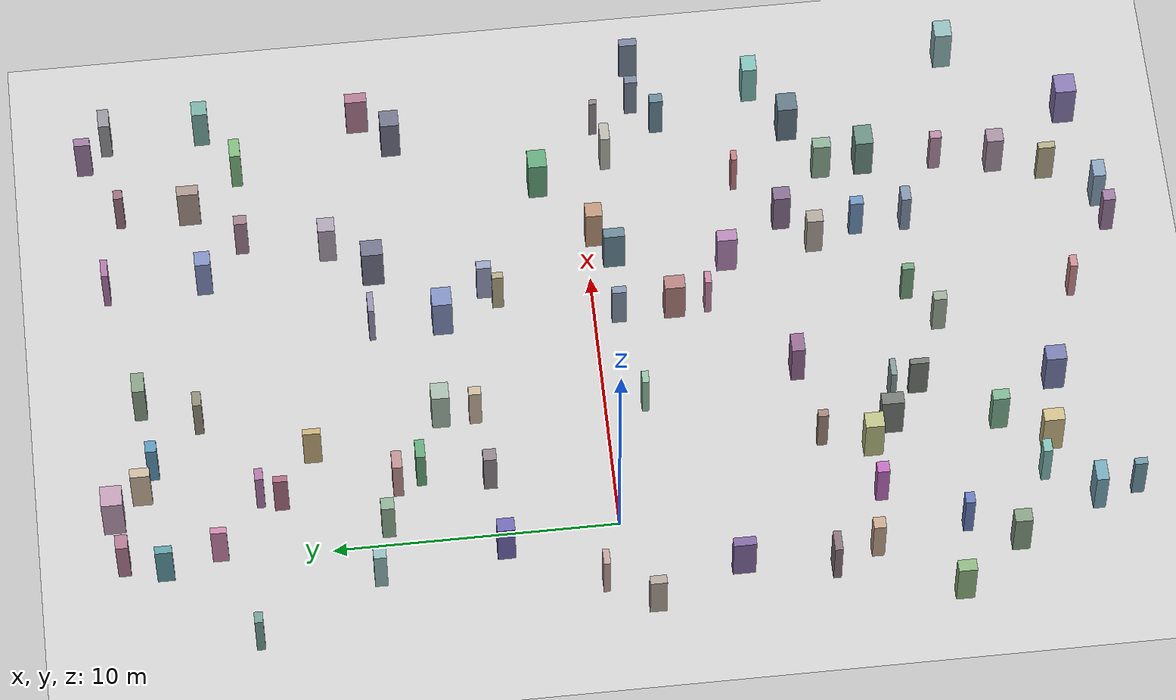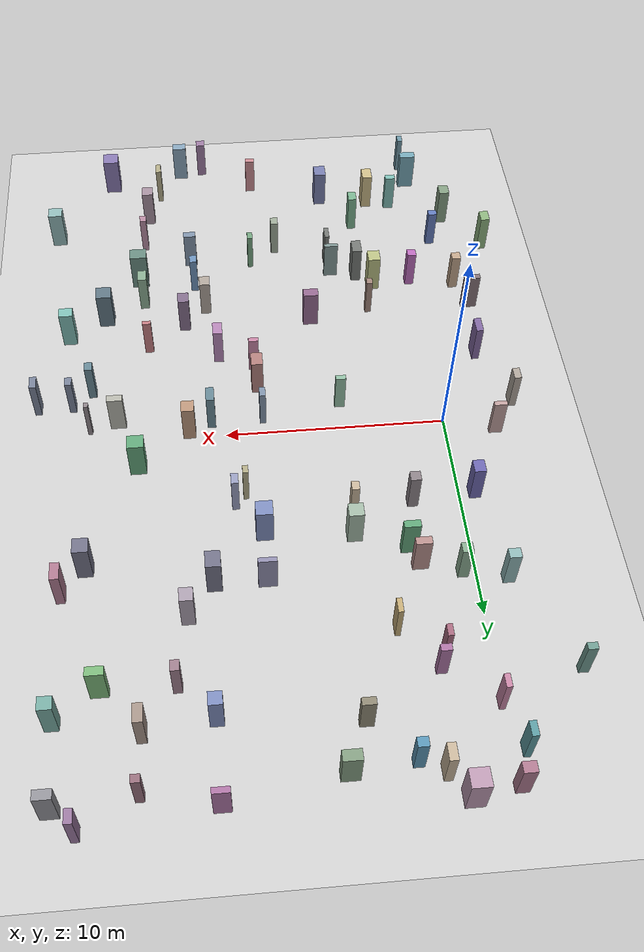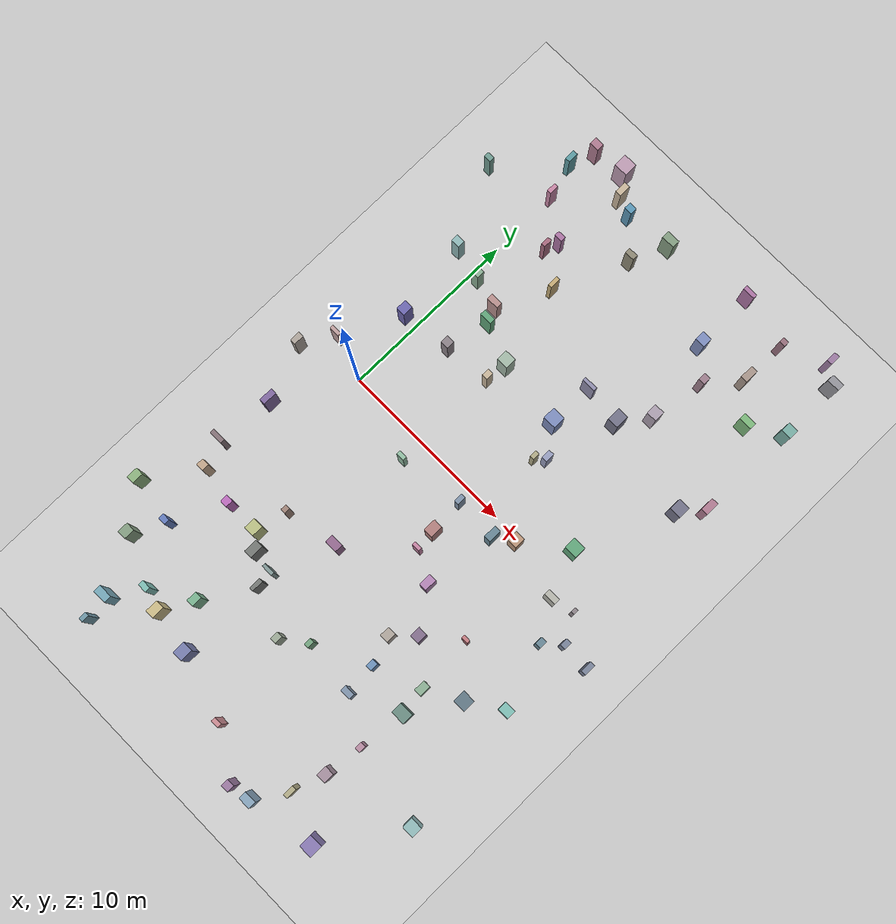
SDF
<sdf version="1.6">
 <world name="mockamap_single_floor">
  <include><uri>model://sun</uri></include>
  <include><uri>model://ground_plane</uri></include>
  <model name="mockamap_box_001">
   <static>true</static>
   <pose>6.2818 16.2389 1.0000 0 0 0</pose>
   <link name="link">
    <collision name="collision"><geometry><box><size>0.7641 0.4449 2.0000</size></box></geometry></collision>
    <visual name="visual">
     <geometry><box><size>0.7641 0.4449 2.0000</size></box></geometry>
     <material><ambient>0.516 0.613 0.507 1.000</ambient><diffuse>0.516 0.613 0.507 1.000</diffuse></material>
    </visual>
   </link>
  </model>
  <model name="mockamap_box_002">
   <static>true</static>
   <pose>17.2371 7.7062 1.0000 0 0 0</pose>
   <link name="link">
    <collision name="collision"><geometry><box><size>0.3860 0.7708 2.0000</size></box></geometry></collision>
    <visual name="visual">
     <geometry><box><size>0.3860 0.7708 2.0000</size></box></geometry>
     <material><ambient>0.683 0.477 0.564 1.000</ambient><diffuse>0.683 0.477 0.564 1.000</diffuse></material>
    </visual>
   </link>
  </model>
  <model name="mockamap_box_004">
   <static>true</static>
   <pose>8.7001 7.9001 1.0000 0 0 0</pose>
   <link name="link">
    <collision name="collision"><geometry><box><size>0.7857 0.2130 2.0000</size></box></geometry></collision>
    <visual name="visual">
     <geometry><box><size>0.7857 0.2130 2.0000</size></box></geometry>
     <material><ambient>0.566 0.554 0.678 1.000</ambient><diffuse>0.566 0.554 0.678 1.000</diffuse></material>
    </visual>
   </link>
  </model>
  <model name="mockamap_box_005">
   <static>true</static>
   <pose>0.2145 -9.1443 1.0000 0 0 0</pose>
   <link name="link">
    <collision name="collision"><geometry><box><size>0.4235 0.4261 2.0000</size></box></geometry></collision>
    <visual name="visual">
     <geometry><box><size>0.4235 0.4261 2.0000</size></box></geometry>
     <material><ambient>0.732 0.418 0.735 1.000</ambient><diffuse>0.732 0.418 0.735 1.000</diffuse></material>
    </visual>
   </link>
  </model>
  <model name="mockamap_box_006">
   <static>true</static>
   <pose>8.1564 -11.0577 1.0000 0 0 0</pose>
   <link name="link">
    <collision name="collision"><geometry><box><size>0.2580 0.4222 2.0000</size></box></geometry></collision>
    <visual name="visual">
     <geometry><box><size>0.2580 0.4222 2.0000</size></box></geometry>
     <material><ambient>0.449 0.631 0.492 1.000</ambient><diffuse>0.449 0.631 0.492 1.000</diffuse></material>
    </visual>
   </link>
  </model>
  <model name="mockamap_box_007">
   <static>true</static>
   <pose>12.5498 12.1996 1.0000 0 0 0</pose>
   <link name="link">
    <collision name="collision"><geometry><box><size>0.3694 0.4579 2.0000</size></box></geometry></collision>
    <visual name="visual">
     <geometry><box><size>0.3694 0.4579 2.0000</size></box></geometry>
     <material><ambient>0.615 0.494 0.549 1.000</ambient><diffuse>0.615 0.494 0.549 1.000</diffuse></material>
    </visual>
   </link>
  </model>
  <model name="mockamap_box_008">
   <static>true</static>
   <pose>2.6775 16.4101 1.0000 0 0 0</pose>
   <link name="link">
    <collision name="collision"><geometry><box><size>0.3515 0.6904 2.0000</size></box></geometry></collision>
    <visual name="visual">
     <geometry><box><size>0.3515 0.6904 2.0000</size></box></geometry>
     <material><ambient>0.782 0.708 0.606 1.000</ambient><diffuse>0.782 0.708 0.606 1.000</diffuse></material>
    </visual>
   </link>
  </model>
  <model name="mockamap_box_009">
   <static>true</static>
   <pose>11.1872 -11.3733 1.0000 0 0 0</pose>
   <link name="link">
    <collision name="collision"><geometry><box><size>0.5878 0.3460 2.0000</size></box></geometry></collision>
    <visual name="visual">
     <geometry><box><size>0.5878 0.3460 2.0000</size></box></geometry>
     <material><ambient>0.498 0.572 0.663 1.000</ambient><diffuse>0.498 0.572 0.663 1.000</diffuse></material>
    </visual>
   </link>
  </model>
  <model name="mockamap_box_011">
   <static>true</static>
   <pose>2.6178 6.7005 1.0000 0 0 0</pose>
   <link name="link">
    <collision name="collision"><geometry><box><size>0.7099 0.3323 2.0000</size></box></geometry></collision>
    <visual name="visual">
     <geometry><box><size>0.7099 0.3323 2.0000</size></box></geometry>
     <material><ambient>0.381 0.648 0.477 1.000</ambient><diffuse>0.381 0.648 0.477 1.000</diffuse></material>
    </visual>
   </link>
  </model>
  <model name="mockamap_box_012">
   <static>true</static>
   <pose>2.1197 4.3284 1.0000 0 0 0</pose>
   <link name="link">
    <collision name="collision"><geometry><box><size>0.4533 0.4592 2.0000</size></box></geometry></collision>
    <visual name="visual">
     <geometry><box><size>0.4533 0.4592 2.0000</size></box></geometry>
     <material><ambient>0.548 0.512 0.534 1.000</ambient><diffuse>0.548 0.512 0.534 1.000</diffuse></material>
    </visual>
   </link>
  </model>
  <model name="mockamap_box_020">
   <static>true</static>
   <pose>15.1869 -17.6498 1.0000 0 0 0</pose>
   <link name="link">
    <collision name="collision"><geometry><box><size>0.7612 0.7426 2.0000</size></box></geometry></collision>
    <visual name="visual">
     <geometry><box><size>0.7612 0.7426 2.0000</size></box></geometry>
     <material><ambient>0.530 0.470 0.690 1.000</ambient><diffuse>0.530 0.470 0.690 1.000</diffuse></material>
    </visual>
   </link>
  </model>
  <model name="mockamap_box_023">
   <static>true</static>
   <pose>5.4816 -6.8172 1.0000 0 0 0</pose>
   <link name="link">
    <collision name="collision"><geometry><box><size>0.7093 0.4625 2.0000</size></box></geometry></collision>
    <visual name="visual">
     <geometry><box><size>0.7093 0.4625 2.0000</size></box></geometry>
     <material><ambient>0.579 0.411 0.561 1.000</ambient><diffuse>0.579 0.411 0.561 1.000</diffuse></material>
    </visual>
   </link>
  </model>
  <model name="mockamap_box_029">
   <static>true</static>
   <pose>10.5710 -8.0434 1.0000 0 0 0</pose>
   <link name="link">
    <collision name="collision"><geometry><box><size>0.4899 0.5765 2.0000</size></box></geometry></collision>
    <visual name="visual">
     <geometry><box><size>0.4899 0.5765 2.0000</size></box></geometry>
     <material><ambient>0.678 0.641 0.603 1.000</ambient><diffuse>0.678 0.641 0.603 1.000</diffuse></material>
    </visual>
   </link>
  </model>
  <model name="mockamap_box_031">
   <static>true</static>
   <pose>17.9842 -13.6035 1.0000 0 0 0</pose>
   <link name="link">
    <collision name="collision"><geometry><box><size>0.6874 0.6146 2.0000</size></box></geometry></collision>
    <visual name="visual">
     <geometry><box><size>0.6874 0.6146 2.0000</size></box></geometry>
     <material><ambient>0.561 0.719 0.717 1.000</ambient><diffuse>0.561 0.719 0.717 1.000</diffuse></material>
    </visual>
   </link>
  </model>
  <model name="mockamap_box_033">
   <static>true</static>
   <pose>10.9038 7.6736 1.0000 0 0 0</pose>
   <link name="link">
    <collision name="collision"><geometry><box><size>0.6380 0.7614 2.0000</size></box></geometry></collision>
    <visual name="visual">
     <geometry><box><size>0.6380 0.7614 2.0000</size></box></geometry>
     <material><ambient>0.445 0.446 0.531 1.000</ambient><diffuse>0.445 0.446 0.531 1.000</diffuse></material>
    </visual>
   </link>
  </model>
  <model name="mockamap_box_035">
   <static>true</static>
   <pose>8.4592 -3.9993 1.0000 0 0 0</pose>
   <link name="link">
    <collision name="collision"><geometry><box><size>0.4658 0.2275 2.0000</size></box></geometry></collision>
    <visual name="visual">
     <geometry><box><size>0.4658 0.2275 2.0000</size></box></geometry>
     <material><ambient>0.777 0.522 0.645 1.000</ambient><diffuse>0.777 0.522 0.645 1.000</diffuse></material>
    </visual>
   </link>
  </model>
  <model name="mockamap_box_036">
   <static>true</static>
   <pose>0.4680 -14.9104 1.0000 0 0 0</pose>
   <link name="link">
    <collision name="collision"><geometry><box><size>0.4964 0.3110 2.0000</size></box></geometry></collision>
    <visual name="visual">
     <geometry><box><size>0.4964 0.3110 2.0000</size></box></geometry>
     <material><ambient>0.494 0.736 0.702 1.000</ambient><diffuse>0.494 0.736 0.702 1.000</diffuse></material>
    </visual>
   </link>
  </model>
  <model name="mockamap_box_039">
   <static>true</static>
   <pose>13.5970 -8.6630 1.0000 0 0 0</pose>
   <link name="link">
    <collision name="collision"><geometry><box><size>0.4249 0.6387 2.0000</size></box></geometry></collision>
    <visual name="visual">
     <geometry><box><size>0.4249 0.6387 2.0000</size></box></geometry>
     <material><ambient>0.543 0.676 0.573 1.000</ambient><diffuse>0.543 0.676 0.573 1.000</diffuse></material>
    </visual>
   </link>
  </model>
  <model name="mockamap_box_040">
   <static>true</static>
   <pose>13.5120 -12.7550 1.0000 0 0 0</pose>
   <link name="link">
    <collision name="collision"><geometry><box><size>0.3060 0.4020 2.0000</size></box></geometry></collision>
    <visual name="visual">
     <geometry><box><size>0.3060 0.4020 2.0000</size></box></geometry>
     <material><ambient>0.710 0.540 0.630 1.000</ambient><diffuse>0.710 0.540 0.630 1.000</diffuse></material>
    </visual>
   </link>
  </model>
  <model name="mockamap_box_041">
   <static>true</static>
   <pose>-0.6810 4.0384 1.0000 0 0 0</pose>
   <link name="link">
    <collision name="collision"><geometry><box><size>0.5067 0.6144 2.0000</size></box></geometry></collision>
    <visual name="visual">
     <geometry><box><size>0.5067 0.6144 2.0000</size></box></geometry>
     <material><ambient>0.426 0.404 0.687 1.000</ambient><diffuse>0.426 0.404 0.687 1.000</diffuse></material>
    </visual>
   </link>
  </model>
  <model name="mockamap_box_044">
   <static>true</static>
   <pose>2.6485 -13.5885 1.0000 0 0 0</pose>
   <link name="link">
    <collision name="collision"><geometry><box><size>0.4067 0.5897 2.0000</size></box></geometry></collision>
    <visual name="visual">
     <geometry><box><size>0.4067 0.5897 2.0000</size></box></geometry>
     <material><ambient>0.476 0.694 0.558 1.000</ambient><diffuse>0.476 0.694 0.558 1.000</diffuse></material>
    </visual>
   </link>
  </model>
  <model name="mockamap_box_045">
   <static>true</static>
   <pose>13.2676 -14.8459 1.0000 0 0 0</pose>
   <link name="link">
    <collision name="collision"><geometry><box><size>0.5390 0.5967 2.0000</size></box></geometry></collision>
    <visual name="visual">
     <geometry><box><size>0.5390 0.5967 2.0000</size></box></geometry>
     <material><ambient>0.642 0.557 0.615 1.000</ambient><diffuse>0.642 0.557 0.615 1.000</diffuse></material>
    </visual>
   </link>
  </model>
  <model name="mockamap_box_047">
   <static>true</static>
   <pose>11.5087 -18.3367 1.0000 0 0 0</pose>
   <link name="link">
    <collision name="collision"><geometry><box><size>0.6854 0.4426 2.0000</size></box></geometry></collision>
    <visual name="visual">
     <geometry><box><size>0.6854 0.4426 2.0000</size></box></geometry>
     <material><ambient>0.525 0.635 0.729 1.000</ambient><diffuse>0.525 0.635 0.729 1.000</diffuse></material>
    </visual>
   </link>
  </model>
  <model name="mockamap_box_048">
   <static>true</static>
   <pose>8.3840 -2.8104 1.0000 0 0 0</pose>
   <link name="link">
    <collision name="collision"><geometry><box><size>0.5285 0.7263 2.0000</size></box></geometry></collision>
    <visual name="visual">
     <geometry><box><size>0.5285 0.7263 2.0000</size></box></geometry>
     <material><ambient>0.692 0.498 0.486 1.000</ambient><diffuse>0.692 0.498 0.486 1.000</diffuse></material>
    </visual>
   </link>
  </model>
  <model name="mockamap_box_050">
   <static>true</static>
   <pose>17.3284 16.7434 1.0000 0 0 0</pose>
   <link name="link">
    <collision name="collision"><geometry><box><size>0.7277 0.3998 2.0000</size></box></geometry></collision>
    <visual name="visual">
     <geometry><box><size>0.7277 0.3998 2.0000</size></box></geometry>
     <material><ambient>0.575 0.575 0.600 1.000</ambient><diffuse>0.575 0.575 0.600 1.000</diffuse></material>
    </visual>
   </link>
  </model>
  <model name="mockamap_box_053">
   <static>true</static>
   <pose>2.5545 -7.3487 1.0000 0 0 0</pose>
   <link name="link">
    <collision name="collision"><geometry><box><size>0.2836 0.3546 2.0000</size></box></geometry></collision>
    <visual name="visual">
     <geometry><box><size>0.2836 0.3546 2.0000</size></box></geometry>
     <material><ambient>0.624 0.516 0.471 1.000</ambient><diffuse>0.624 0.516 0.471 1.000</diffuse></material>
    </visual>
   </link>
  </model>
  <model name="mockamap_box_054">
   <static>true</static>
   <pose>1.6635 -15.3077 1.0000 0 0 0</pose>
   <link name="link">
    <collision name="collision"><geometry><box><size>0.4880 0.7212 2.0000</size></box></geometry></collision>
    <visual name="visual">
     <geometry><box><size>0.4880 0.7212 2.0000</size></box></geometry>
     <material><ambient>0.791 0.729 0.528 1.000</ambient><diffuse>0.791 0.729 0.528 1.000</diffuse></material>
    </visual>
   </link>
  </model>
  <model name="mockamap_box_056">
   <static>true</static>
   <pose>11.0569 17.1082 1.0000 0 0 0</pose>
   <link name="link">
    <collision name="collision"><geometry><box><size>0.6971 0.2421 2.0000</size></box></geometry></collision>
    <visual name="visual">
     <geometry><box><size>0.6971 0.2421 2.0000</size></box></geometry>
     <material><ambient>0.674 0.456 0.642 1.000</ambient><diffuse>0.674 0.456 0.642 1.000</diffuse></material>
    </visual>
   </link>
  </model>
  <model name="mockamap_box_059">
   <static>true</static>
   <pose>2.1037 -9.0892 1.0000 0 0 0</pose>
   <link name="link">
    <collision name="collision"><geometry><box><size>0.5887 0.6668 2.0000</size></box></geometry></collision>
    <visual name="visual">
     <geometry><box><size>0.5887 0.6668 2.0000</size></box></geometry>
     <material><ambient>0.724 0.746 0.513 1.000</ambient><diffuse>0.724 0.746 0.513 1.000</diffuse></material>
    </visual>
   </link>
  </model>
  <model name="mockamap_box_060">
   <static>true</static>
   <pose>-3.3759 12.7470 1.0000 0 0 0</pose>
   <link name="link">
    <collision name="collision"><geometry><box><size>0.4164 0.2947 2.0000</size></box></geometry></collision>
    <visual name="visual">
     <geometry><box><size>0.4164 0.2947 2.0000</size></box></geometry>
     <material><ambient>0.440 0.610 0.570 1.000</ambient><diffuse>0.440 0.610 0.570 1.000</diffuse></material>
    </visual>
   </link>
  </model>
  <model name="mockamap_box_061">
   <static>true</static>
   <pose>16.3893 17.5754 1.0000 0 0 0</pose>
   <link name="link">
    <collision name="collision"><geometry><box><size>0.3185 0.5636 2.0000</size></box></geometry></collision>
    <visual name="visual">
     <geometry><box><size>0.3185 0.5636 2.0000</size></box></geometry>
     <material><ambient>0.607 0.474 0.627 1.000</ambient><diffuse>0.607 0.474 0.627 1.000</diffuse></material>
    </visual>
   </link>
  </model>
  <model name="mockamap_box_063">
   <static>true</static>
   <pose>8.6541 5.4035 1.0000 0 0 0</pose>
   <link name="link">
    <collision name="collision"><geometry><box><size>0.7348 0.7013 2.0000</size></box></geometry></collision>
    <visual name="visual">
     <geometry><box><size>0.7348 0.7013 2.0000</size></box></geometry>
     <material><ambient>0.489 0.550 0.741 1.000</ambient><diffuse>0.489 0.550 0.741 1.000</diffuse></material>
    </visual>
   </link>
  </model>
  <model name="mockamap_box_064">
   <static>true</static>
   <pose>1.9212 11.6076 1.0000 0 0 0</pose>
   <link name="link">
    <collision name="collision"><geometry><box><size>0.2420 0.5027 2.0000</size></box></geometry></collision>
    <visual name="visual">
     <geometry><box><size>0.2420 0.5027 2.0000</size></box></geometry>
     <material><ambient>0.656 0.414 0.498 1.000</ambient><diffuse>0.656 0.414 0.498 1.000</diffuse></material>
    </visual>
   </link>
  </model>
  <model name="mockamap_box_067">
   <static>true</static>
   <pose>14.8944 -1.0081 1.0000 0 0 0</pose>
   <link name="link">
    <collision name="collision"><geometry><box><size>0.7002 0.3442 2.0000</size></box></geometry></collision>
    <visual name="visual">
     <geometry><box><size>0.7002 0.3442 2.0000</size></box></geometry>
     <material><ambient>0.706 0.705 0.669 1.000</ambient><diffuse>0.706 0.705 0.669 1.000</diffuse></material>
    </visual>
   </link>
  </model>
  <model name="mockamap_box_068">
   <static>true</static>
   <pose>11.0686 -9.6048 1.0000 0 0 0</pose>
   <link name="link">
    <collision name="collision"><geometry><box><size>0.3391 0.4649 2.0000</size></box></geometry></collision>
    <visual name="visual">
     <geometry><box><size>0.3391 0.4649 2.0000</size></box></geometry>
     <material><ambient>0.422 0.568 0.726 1.000</ambient><diffuse>0.422 0.568 0.726 1.000</diffuse></material>
    </visual>
   </link>
  </model>
  <model name="mockamap_box_071">
   <static>true</static>
   <pose>16.9889 -2.1742 1.0000 0 0 0</pose>
   <link name="link">
    <collision name="collision"><geometry><box><size>0.3049 0.4423 2.0000</size></box></geometry></collision>
    <visual name="visual">
     <geometry><box><size>0.3049 0.4423 2.0000</size></box></geometry>
     <material><ambient>0.471 0.509 0.597 1.000</ambient><diffuse>0.471 0.509 0.597 1.000</diffuse></material>
    </visual>
   </link>
  </model>
  <model name="mockamap_box_073">
   <static>true</static>
   <pose>3.6791 15.9606 1.0000 0 0 0</pose>
   <link name="link">
    <collision name="collision"><geometry><box><size>0.4465 0.3913 2.0000</size></box></geometry></collision>
    <visual name="visual">
     <geometry><box><size>0.4465 0.3913 2.0000</size></box></geometry>
     <material><ambient>0.354 0.586 0.711 1.000</ambient><diffuse>0.354 0.586 0.711 1.000</diffuse></material>
    </visual>
   </link>
  </model>
  <model name="mockamap_box_074">
   <static>true</static>
   <pose>-2.5006 -7.2289 1.0000 0 0 0</pose>
   <link name="link">
    <collision name="collision"><geometry><box><size>0.7480 0.2748 2.0000</size></box></geometry></collision>
    <visual name="visual">
     <geometry><box><size>0.7480 0.2748 2.0000</size></box></geometry>
     <material><ambient>0.521 0.449 0.468 1.000</ambient><diffuse>0.521 0.449 0.468 1.000</diffuse></material>
    </visual>
   </link>
  </model>
  <model name="mockamap_box_075">
   <static>true</static>
   <pose>12.6572 -16.6273 1.0000 0 0 0</pose>
   <link name="link">
    <collision name="collision"><geometry><box><size>0.2594 0.5960 2.0000</size></box></geometry></collision>
    <visual name="visual">
     <geometry><box><size>0.2594 0.5960 2.0000</size></box></geometry>
     <material><ambient>0.688 0.663 0.525 1.000</ambient><diffuse>0.688 0.663 0.525 1.000</diffuse></material>
    </visual>
   </link>
  </model>
  <model name="mockamap_box_076">
   <static>true</static>
   <pose>16.0989 -2.9907 1.0000 0 0 0</pose>
   <link name="link">
    <collision name="collision"><geometry><box><size>0.3531 0.4639 2.0000</size></box></geometry></collision>
    <visual name="visual">
     <geometry><box><size>0.3531 0.4639 2.0000</size></box></geometry>
     <material><ambient>0.404 0.526 0.582 1.000</ambient><diffuse>0.404 0.526 0.582 1.000</diffuse></material>
    </visual>
   </link>
  </model>
  <model name="mockamap_box_077">
   <static>true</static>
   <pose>4.6569 -1.3683 1.0000 0 0 0</pose>
   <link name="link">
    <collision name="collision"><geometry><box><size>0.4637 0.2388 2.0000</size></box></geometry></collision>
    <visual name="visual">
     <geometry><box><size>0.4637 0.2388 2.0000</size></box></geometry>
     <material><ambient>0.571 0.740 0.639 1.000</ambient><diffuse>0.571 0.740 0.639 1.000</diffuse></material>
    </visual>
   </link>
  </model>
  <model name="mockamap_box_078">
   <static>true</static>
   <pose>1.8646 17.4409 1.0000 0 0 0</pose>
   <link name="link">
    <collision name="collision"><geometry><box><size>0.7851 0.7520 2.0000</size></box></geometry></collision>
    <visual name="visual">
     <geometry><box><size>0.7851 0.7520 2.0000</size></box></geometry>
     <material><ambient>0.737 0.603 0.696 1.000</ambient><diffuse>0.737 0.603 0.696 1.000</diffuse></material>
    </visual>
   </link>
  </model>
  <model name="mockamap_box_079">
   <static>true</static>
   <pose>2.8908 -9.8268 1.0000 0 0 0</pose>
   <link name="link">
    <collision name="collision"><geometry><box><size>0.4596 0.7868 2.0000</size></box></geometry></collision>
    <visual name="visual">
     <geometry><box><size>0.4596 0.7868 2.0000</size></box></geometry>
     <material><ambient>0.453 0.467 0.453 1.000</ambient><diffuse>0.453 0.467 0.453 1.000</diffuse></material>
    </visual>
   </link>
  </model>
  <model name="mockamap_box_081">
   <static>true</static>
   <pose>7.7788 -16.8806 1.0000 0 0 0</pose>
   <link name="link">
    <collision name="collision"><geometry><box><size>0.4600 0.2597 2.0000</size></box></geometry></collision>
    <visual name="visual">
     <geometry><box><size>0.4600 0.2597 2.0000</size></box></geometry>
     <material><ambient>0.786 0.543 0.567 1.000</ambient><diffuse>0.786 0.543 0.567 1.000</diffuse></material>
    </visual>
   </link>
  </model>
  <model name="mockamap_box_082">
   <static>true</static>
   <pose>-2.1978 -4.0511 1.0000 0 0 0</pose>
   <link name="link">
    <collision name="collision"><geometry><box><size>0.3301 0.7954 2.0000</size></box></geometry></collision>
    <visual name="visual">
     <geometry><box><size>0.3301 0.7954 2.0000</size></box></geometry>
     <material><ambient>0.503 0.407 0.624 1.000</ambient><diffuse>0.503 0.407 0.624 1.000</diffuse></material>
    </visual>
   </link>
  </model>
  <model name="mockamap_box_083">
   <static>true</static>
   <pose>12.0341 9.1957 1.0000 0 0 0</pose>
   <link name="link">
    <collision name="collision"><geometry><box><size>0.5703 0.6032 2.0000</size></box></geometry></collision>
    <visual name="visual">
     <geometry><box><size>0.5703 0.6032 2.0000</size></box></geometry>
     <material><ambient>0.669 0.621 0.681 1.000</ambient><diffuse>0.669 0.621 0.681 1.000</diffuse></material>
    </visual>
   </link>
  </model>
  <model name="mockamap_box_084">
   <static>true</static>
   <pose>-1.3048 -11.9632 1.0000 0 0 0</pose>
   <link name="link">
    <collision name="collision"><geometry><box><size>0.4255 0.3297 2.0000</size></box></geometry></collision>
    <visual name="visual">
     <geometry><box><size>0.4255 0.3297 2.0000</size></box></geometry>
     <material><ambient>0.386 0.484 0.738 1.000</ambient><diffuse>0.386 0.484 0.738 1.000</diffuse></material>
    </visual>
   </link>
  </model>
  <model name="mockamap_box_085">
   <static>true</static>
   <pose>-3.9207 -11.5116 1.0000 0 0 0</pose>
   <link name="link">
    <collision name="collision"><geometry><box><size>0.4373 0.6448 2.0000</size></box></geometry></collision>
    <visual name="visual">
     <geometry><box><size>0.4373 0.6448 2.0000</size></box></geometry>
     <material><ambient>0.552 0.698 0.495 1.000</ambient><diffuse>0.552 0.698 0.495 1.000</diffuse></material>
    </visual>
   </link>
  </model>
  <model name="mockamap_box_086">
   <static>true</static>
   <pose>2.2751 7.5382 1.0000 0 0 0</pose>
   <link name="link">
    <collision name="collision"><geometry><box><size>0.6881 0.3488 2.0000</size></box></geometry></collision>
    <visual name="visual">
     <geometry><box><size>0.6881 0.3488 2.0000</size></box></geometry>
     <material><ambient>0.719 0.561 0.552 1.000</ambient><diffuse>0.719 0.561 0.552 1.000</diffuse></material>
    </visual>
   </link>
  </model>
  <model name="mockamap_box_090">
   <static>true</static>
   <pose>15.5859 12.1777 1.0000 0 0 0</pose>
   <link name="link">
    <collision name="collision"><geometry><box><size>0.7402 0.3820 2.0000</size></box></geometry></collision>
    <visual name="visual">
     <geometry><box><size>0.7402 0.3820 2.0000</size></box></geometry>
     <material><ambient>0.485 0.715 0.480 1.000</ambient><diffuse>0.485 0.715 0.480 1.000</diffuse></material>
    </visual>
   </link>
  </model>
  <model name="mockamap_box_091">
   <static>true</static>
   <pose>13.9666 13.9694 1.0000 0 0 0</pose>
   <link name="link">
    <collision name="collision"><geometry><box><size>0.3954 0.7713 2.0000</size></box></geometry></collision>
    <visual name="visual">
     <geometry><box><size>0.3954 0.7713 2.0000</size></box></geometry>
     <material><ambient>0.651 0.579 0.537 1.000</ambient><diffuse>0.651 0.579 0.537 1.000</diffuse></material>
    </visual>
   </link>
  </model>
  <model name="mockamap_box_094">
   <static>true</static>
   <pose>10.0986 -4.8595 1.0000 0 0 0</pose>
   <link name="link">
    <collision name="collision"><geometry><box><size>0.4452 0.7062 2.0000</size></box></geometry></collision>
    <visual name="visual">
     <geometry><box><size>0.4452 0.7062 2.0000</size></box></geometry>
     <material><ambient>0.701 0.519 0.708 1.000</ambient><diffuse>0.701 0.519 0.708 1.000</diffuse></material>
    </visual>
   </link>
  </model>
  <model name="mockamap_box_098">
   <static>true</static>
   <pose>17.3859 13.3164 1.0000 0 0 0</pose>
   <link name="link">
    <collision name="collision"><geometry><box><size>0.5829 0.5497 2.0000</size></box></geometry></collision>
    <visual name="visual">
     <geometry><box><size>0.5829 0.5497 2.0000</size></box></geometry>
     <material><ambient>0.467 0.673 0.636 1.000</ambient><diffuse>0.467 0.673 0.636 1.000</diffuse></material>
    </visual>
   </link>
  </model>
  <model name="mockamap_box_101">
   <static>true</static>
   <pose>-2.1827 -13.6906 1.0000 0 0 0</pose>
   <link name="link">
    <collision name="collision"><geometry><box><size>0.4989 0.6084 2.0000</size></box></geometry></collision>
    <visual name="visual">
     <geometry><box><size>0.4989 0.6084 2.0000</size></box></geometry>
     <material><ambient>0.516 0.613 0.507 1.000</ambient><diffuse>0.516 0.613 0.507 1.000</diffuse></material>
    </visual>
   </link>
  </model>
  <model name="mockamap_box_102">
   <static>true</static>
   <pose>0.0350 17.2070 1.0000 0 0 0</pose>
   <link name="link">
    <collision name="collision"><geometry><box><size>0.5461 0.4370 2.0000</size></box></geometry></collision>
    <visual name="visual">
     <geometry><box><size>0.5461 0.4370 2.0000</size></box></geometry>
     <material><ambient>0.683 0.477 0.564 1.000</ambient><diffuse>0.683 0.477 0.564 1.000</diffuse></material>
    </visual>
   </link>
  </model>
  <model name="mockamap_box_108">
   <static>true</static>
   <pose>4.7229 4.6010 1.0000 0 0 0</pose>
   <link name="link">
    <collision name="collision"><geometry><box><size>0.3322 0.4301 2.0000</size></box></geometry></collision>
    <visual name="visual">
     <geometry><box><size>0.3322 0.4301 2.0000</size></box></geometry>
     <material><ambient>0.782 0.708 0.606 1.000</ambient><diffuse>0.782 0.708 0.606 1.000</diffuse></material>
    </visual>
   </link>
  </model>
  <model name="mockamap_box_109">
   <static>true</static>
   <pose>8.2695 -0.8385 1.0000 0 0 0</pose>
   <link name="link">
    <collision name="collision"><geometry><box><size>0.2728 0.5120 2.0000</size></box></geometry></collision>
    <visual name="visual">
     <geometry><box><size>0.2728 0.5120 2.0000</size></box></geometry>
     <material><ambient>0.498 0.572 0.663 1.000</ambient><diffuse>0.498 0.572 0.663 1.000</diffuse></material>
    </visual>
   </link>
  </model>
  <model name="mockamap_box_111">
   <static>true</static>
   <pose>13.9931 1.5019 1.0000 0 0 0</pose>
   <link name="link">
    <collision name="collision"><geometry><box><size>0.7303 0.6660 2.0000</size></box></geometry></collision>
    <visual name="visual">
     <geometry><box><size>0.7303 0.6660 2.0000</size></box></geometry>
     <material><ambient>0.381 0.648 0.477 1.000</ambient><diffuse>0.381 0.648 0.477 1.000</diffuse></material>
    </visual>
   </link>
  </model>
  <model name="mockamap_box_112">
   <static>true</static>
   <pose>16.1726 -0.7255 1.0000 0 0 0</pose>
   <link name="link">
    <collision name="collision"><geometry><box><size>0.2011 0.2708 2.0000</size></box></geometry></collision>
    <visual name="visual">
     <geometry><box><size>0.2011 0.2708 2.0000</size></box></geometry>
     <material><ambient>0.548 0.512 0.534 1.000</ambient><diffuse>0.548 0.512 0.534 1.000</diffuse></material>
    </visual>
   </link>
  </model>
  <model name="mockamap_box_114">
   <static>true</static>
   <pose>-0.4937 -18.0345 1.0000 0 0 0</pose>
   <link name="link">
    <collision name="collision"><geometry><box><size>0.2547 0.4406 2.0000</size></box></geometry></collision>
    <visual name="visual">
     <geometry><box><size>0.2547 0.4406 2.0000</size></box></geometry>
     <material><ambient>0.431 0.589 0.648 1.000</ambient><diffuse>0.431 0.589 0.648 1.000</diffuse></material>
    </visual>
   </link>
  </model>
  <model name="mockamap_box_116">
   <static>true</static>
   <pose>3.6860 10.3830 1.0000 0 0 0</pose>
   <link name="link">
    <collision name="collision"><geometry><box><size>0.2237 0.6267 2.0000</size></box></geometry></collision>
    <visual name="visual">
     <geometry><box><size>0.2237 0.6267 2.0000</size></box></geometry>
     <material><ambient>0.764 0.666 0.462 1.000</ambient><diffuse>0.764 0.666 0.462 1.000</diffuse></material>
    </visual>
   </link>
  </model>
  <model name="mockamap_box_119">
   <static>true</static>
   <pose>-0.4287 15.7992 1.0000 0 0 0</pose>
   <link name="link">
    <collision name="collision"><geometry><box><size>0.2853 0.5980 2.0000</size></box></geometry></collision>
    <visual name="visual">
     <geometry><box><size>0.2853 0.5980 2.0000</size></box></geometry>
     <material><ambient>0.363 0.607 0.633 1.000</ambient><diffuse>0.363 0.607 0.633 1.000</diffuse></material>
    </visual>
   </link>
  </model>
  <model name="mockamap_box_122">
   <static>true</static>
   <pose>13.7817 -10.1893 1.0000 0 0 0</pose>
   <link name="link">
    <collision name="collision"><geometry><box><size>0.7965 0.6355 2.0000</size></box></geometry></collision>
    <visual name="visual">
     <geometry><box><size>0.7965 0.6355 2.0000</size></box></geometry>
     <material><ambient>0.413 0.547 0.504 1.000</ambient><diffuse>0.413 0.547 0.504 1.000</diffuse></material>
    </visual>
   </link>
  </model>
  <model name="mockamap_box_124">
   <static>true</static>
   <pose>-2.2839 0.7262 1.0000 0 0 0</pose>
   <link name="link">
    <collision name="collision"><geometry><box><size>0.5878 0.2313 2.0000</size></box></geometry></collision>
    <visual name="visual">
     <geometry><box><size>0.5878 0.2313 2.0000</size></box></geometry>
     <material><ambient>0.746 0.624 0.618 1.000</ambient><diffuse>0.746 0.624 0.618 1.000</diffuse></material>
    </visual>
   </link>
  </model>
  <model name="mockamap_box_125">
   <static>true</static>
   <pose>4.1285 -15.7294 1.0000 0 0 0</pose>
   <link name="link">
    <collision name="collision"><geometry><box><size>0.5821 0.7164 2.0000</size></box></geometry></collision>
    <visual name="visual">
     <geometry><box><size>0.5821 0.7164 2.0000</size></box></geometry>
     <material><ambient>0.462 0.488 0.675 1.000</ambient><diffuse>0.462 0.488 0.675 1.000</diffuse></material>
    </visual>
   </link>
  </model>
  <model name="mockamap_box_128">
   <static>true</static>
   <pose>11.6420 -6.9896 1.0000 0 0 0</pose>
   <link name="link">
    <collision name="collision"><geometry><box><size>0.5151 0.6053 2.0000</size></box></geometry></collision>
    <visual name="visual">
     <geometry><box><size>0.5151 0.6053 2.0000</size></box></geometry>
     <material><ambient>0.512 0.428 0.546 1.000</ambient><diffuse>0.512 0.428 0.546 1.000</diffuse></material>
    </visual>
   </link>
  </model>
  <model name="mockamap_box_129">
   <static>true</static>
   <pose>-3.3661 -0.9453 1.0000 0 0 0</pose>
   <link name="link">
    <collision name="collision"><geometry><box><size>0.3237 0.5862 2.0000</size></box></geometry></collision>
    <visual name="visual">
     <geometry><box><size>0.3237 0.5862 2.0000</size></box></geometry>
     <material><ambient>0.678 0.641 0.603 1.000</ambient><diffuse>0.678 0.641 0.603 1.000</diffuse></material>
    </visual>
   </link>
  </model>
  <model name="mockamap_box_131">
   <static>true</static>
   <pose>-1.2905 8.4348 1.0000 0 0 0</pose>
   <link name="link">
    <collision name="collision"><geometry><box><size>0.5104 0.4400 2.0000</size></box></geometry></collision>
    <visual name="visual">
     <geometry><box><size>0.5104 0.4400 2.0000</size></box></geometry>
     <material><ambient>0.561 0.719 0.717 1.000</ambient><diffuse>0.561 0.719 0.717 1.000</diffuse></material>
    </visual>
   </link>
  </model>
  <model name="mockamap_box_132">
   <static>true</static>
   <pose>11.6573 -0.2826 1.0000 0 0 0</pose>
   <link name="link">
    <collision name="collision"><geometry><box><size>0.5742 0.5966 2.0000</size></box></geometry></collision>
    <visual name="visual">
     <geometry><box><size>0.5742 0.5966 2.0000</size></box></geometry>
     <material><ambient>0.728 0.582 0.474 1.000</ambient><diffuse>0.728 0.582 0.474 1.000</diffuse></material>
    </visual>
   </link>
  </model>
  <model name="mockamap_box_133">
   <static>true</static>
   <pose>16.2469 6.5904 1.0000 0 0 0</pose>
   <link name="link">
    <collision name="collision"><geometry><box><size>0.6616 0.6716 2.0000</size></box></geometry></collision>
    <visual name="visual">
     <geometry><box><size>0.6616 0.6716 2.0000</size></box></geometry>
     <material><ambient>0.445 0.446 0.531 1.000</ambient><diffuse>0.445 0.446 0.531 1.000</diffuse></material>
    </visual>
   </link>
  </model>
  <model name="mockamap_box_134">
   <static>true</static>
   <pose>6.8507 -12.0196 1.0000 0 0 0</pose>
   <link name="link">
    <collision name="collision"><geometry><box><size>0.3519 0.4739 2.0000</size></box></geometry></collision>
    <visual name="visual">
     <geometry><box><size>0.3519 0.4739 2.0000</size></box></geometry>
     <material><ambient>0.611 0.659 0.588 1.000</ambient><diffuse>0.611 0.659 0.588 1.000</diffuse></material>
    </visual>
   </link>
  </model>
  <model name="mockamap_box_135">
   <static>true</static>
   <pose>0.1260 13.8673 1.0000 0 0 0</pose>
   <link name="link">
    <collision name="collision"><geometry><box><size>0.2427 0.5578 2.0000</size></box></geometry></collision>
    <visual name="visual">
     <geometry><box><size>0.2427 0.5578 2.0000</size></box></geometry>
     <material><ambient>0.777 0.522 0.645 1.000</ambient><diffuse>0.777 0.522 0.645 1.000</diffuse></material>
    </visual>
   </link>
  </model>
  <model name="mockamap_box_136">
   <static>true</static>
   <pose>17.2350 -6.4756 1.0000 0 0 0</pose>
   <link name="link">
    <collision name="collision"><geometry><box><size>0.6450 0.5305 2.0000</size></box></geometry></collision>
    <visual name="visual">
     <geometry><box><size>0.6450 0.5305 2.0000</size></box></geometry>
     <material><ambient>0.494 0.736 0.702 1.000</ambient><diffuse>0.494 0.736 0.702 1.000</diffuse></material>
    </visual>
   </link>
  </model>
  <model name="mockamap_box_138">
   <static>true</static>
   <pose>15.4582 -7.6391 1.0000 0 0 0</pose>
   <link name="link">
    <collision name="collision"><geometry><box><size>0.7233 0.7032 2.0000</size></box></geometry></collision>
    <visual name="visual">
     <geometry><box><size>0.7233 0.7032 2.0000</size></box></geometry>
     <material><ambient>0.377 0.463 0.516 1.000</ambient><diffuse>0.377 0.463 0.516 1.000</diffuse></material>
    </visual>
   </link>
  </model>
  <model name="mockamap_box_139">
   <static>true</static>
   <pose>0.5694 8.0060 1.0000 0 0 0</pose>
   <link name="link">
    <collision name="collision"><geometry><box><size>0.4600 0.4628 2.0000</size></box></geometry></collision>
    <visual name="visual">
     <geometry><box><size>0.4600 0.4628 2.0000</size></box></geometry>
     <material><ambient>0.543 0.676 0.573 1.000</ambient><diffuse>0.543 0.676 0.573 1.000</diffuse></material>
    </visual>
   </link>
  </model>
  <model name="mockamap_box_142">
   <static>true</static>
   <pose>9.7931 3.8117 1.0000 0 0 0</pose>
   <link name="link">
    <collision name="collision"><geometry><box><size>0.3162 0.5163 2.0000</size></box></geometry></collision>
    <visual name="visual">
     <geometry><box><size>0.3162 0.5163 2.0000</size></box></geometry>
     <material><ambient>0.593 0.617 0.744 1.000</ambient><diffuse>0.593 0.617 0.744 1.000</diffuse></material>
    </visual>
   </link>
  </model>
  <model name="mockamap_box_143">
   <static>true</static>
   <pose>13.4054 -5.4893 1.0000 0 0 0</pose>
   <link name="link">
    <collision name="collision"><geometry><box><size>0.3983 0.2061 2.0000</size></box></geometry></collision>
    <visual name="visual">
     <geometry><box><size>0.3983 0.2061 2.0000</size></box></geometry>
     <material><ambient>0.760 0.481 0.501 1.000</ambient><diffuse>0.760 0.481 0.501 1.000</diffuse></material>
    </visual>
   </link>
  </model>
  <model name="mockamap_box_152">
   <static>true</static>
   <pose>-0.7027 -16.6230 1.0000 0 0 0</pose>
   <link name="link">
    <collision name="collision"><geometry><box><size>0.7760 0.4247 2.0000</size></box></geometry></collision>
    <visual name="visual">
     <geometry><box><size>0.7760 0.4247 2.0000</size></box></geometry>
     <material><ambient>0.458 0.652 0.714 1.000</ambient><diffuse>0.458 0.652 0.714 1.000</diffuse></material>
    </visual>
   </link>
  </model>
  <model name="mockamap_box_155">
   <static>true</static>
   <pose>4.1421 -10.0058 1.0000 0 0 0</pose>
   <link name="link">
    <collision name="collision"><geometry><box><size>0.6637 0.2027 2.0000</size></box></geometry></collision>
    <visual name="visual">
     <geometry><box><size>0.6637 0.2027 2.0000</size></box></geometry>
     <material><ambient>0.507 0.593 0.585 1.000</ambient><diffuse>0.507 0.593 0.585 1.000</diffuse></material>
    </visual>
   </link>
  </model>
  <model name="mockamap_box_156">
   <static>true</static>
   <pose>2.1953 12.3291 1.0000 0 0 0</pose>
   <link name="link">
    <collision name="collision"><geometry><box><size>0.4512 0.2911 2.0000</size></box></geometry></collision>
    <visual name="visual">
     <geometry><box><size>0.4512 0.2911 2.0000</size></box></geometry>
     <material><ambient>0.674 0.456 0.642 1.000</ambient><diffuse>0.674 0.456 0.642 1.000</diffuse></material>
    </visual>
   </link>
  </model>
  <model name="mockamap_box_158">
   <static>true</static>
   <pose>5.4178 14.2463 1.0000 0 0 0</pose>
   <link name="link">
    <collision name="collision"><geometry><box><size>0.5676 0.3134 2.0000</size></box></geometry></collision>
    <visual name="visual">
     <geometry><box><size>0.5676 0.3134 2.0000</size></box></geometry>
     <material><ambient>0.557 0.533 0.456 1.000</ambient><diffuse>0.557 0.533 0.456 1.000</diffuse></material>
    </visual>
   </link>
  </model>
  <model name="mockamap_box_161">
   <static>true</static>
   <pose>10.3560 -18.5340 1.0000 0 0 0</pose>
   <link name="link">
    <collision name="collision"><geometry><box><size>0.4385 0.4296 2.0000</size></box></geometry></collision>
    <visual name="visual">
     <geometry><box><size>0.4385 0.4296 2.0000</size></box></geometry>
     <material><ambient>0.607 0.474 0.627 1.000</ambient><diffuse>0.607 0.474 0.627 1.000</diffuse></material>
    </visual>
   </link>
  </model>
  <model name="mockamap_box_163">
   <static>true</static>
   <pose>11.0937 13.6455 1.0000 0 0 0</pose>
   <link name="link">
    <collision name="collision"><geometry><box><size>0.5655 0.5548 2.0000</size></box></geometry></collision>
    <visual name="visual">
     <geometry><box><size>0.5655 0.5548 2.0000</size></box></geometry>
     <material><ambient>0.489 0.550 0.741 1.000</ambient><diffuse>0.489 0.550 0.741 1.000</diffuse></material>
    </visual>
   </link>
  </model>
  <model name="mockamap_box_169">
   <static>true</static>
   <pose>14.0545 16.4359 1.0000 0 0 0</pose>
   <link name="link">
    <collision name="collision"><geometry><box><size>0.3631 0.3209 2.0000</size></box></geometry></collision>
    <visual name="visual">
     <geometry><box><size>0.3631 0.3209 2.0000</size></box></geometry>
     <material><ambient>0.589 0.431 0.483 1.000</ambient><diffuse>0.589 0.431 0.483 1.000</diffuse></material>
    </visual>
   </link>
  </model>
  <model name="mockamap_box_170">
   <static>true</static>
   <pose>-1.9525 -8.7384 1.0000 0 0 0</pose>
   <link name="link">
    <collision name="collision"><geometry><box><size>0.4328 0.4303 2.0000</size></box></geometry></collision>
    <visual name="visual">
     <geometry><box><size>0.4328 0.4303 2.0000</size></box></geometry>
     <material><ambient>0.755 0.645 0.540 1.000</ambient><diffuse>0.755 0.645 0.540 1.000</diffuse></material>
    </visual>
   </link>
  </model>
  <model name="mockamap_box_171">
   <static>true</static>
   <pose>18.5838 -2.2424 1.0000 0 0 0</pose>
   <link name="link">
    <collision name="collision"><geometry><box><size>0.3041 0.6419 2.0000</size></box></geometry></collision>
    <visual name="visual">
     <geometry><box><size>0.3041 0.6419 2.0000</size></box></geometry>
     <material><ambient>0.471 0.509 0.597 1.000</ambient><diffuse>0.471 0.509 0.597 1.000</diffuse></material>
    </visual>
   </link>
  </model>
  <model name="mockamap_box_172">
   <static>true</static>
   <pose>4.8454 5.8146 1.0000 0 0 0</pose>
   <link name="link">
    <collision name="collision"><geometry><box><size>0.6487 0.6247 2.0000</size></box></geometry></collision>
    <visual name="visual">
     <geometry><box><size>0.6487 0.6247 2.0000</size></box></geometry>
     <material><ambient>0.638 0.722 0.654 1.000</ambient><diffuse>0.638 0.722 0.654 1.000</diffuse></material>
    </visual>
   </link>
  </model>
  <model name="mockamap_box_175">
   <static>true</static>
   <pose>9.3080 3.3656 1.0000 0 0 0</pose>
   <link name="link">
    <collision name="collision"><geometry><box><size>0.2436 0.3912 2.0000</size></box></geometry></collision>
    <visual name="visual">
     <geometry><box><size>0.2436 0.3912 2.0000</size></box></geometry>
     <material><ambient>0.688 0.663 0.525 1.000</ambient><diffuse>0.688 0.663 0.525 1.000</diffuse></material>
    </visual>
   </link>
  </model>
  <model name="mockamap_box_176">
   <static>true</static>
   <pose>10.6312 -0.8999 1.0000 0 0 0</pose>
   <link name="link">
    <collision name="collision"><geometry><box><size>0.3745 0.7480 2.0000</size></box></geometry></collision>
    <visual name="visual">
     <geometry><box><size>0.3745 0.7480 2.0000</size></box></geometry>
     <material><ambient>0.404 0.526 0.582 1.000</ambient><diffuse>0.404 0.526 0.582 1.000</diffuse></material>
    </visual>
   </link>
  </model>
  <model name="mockamap_box_179">
   <static>true</static>
   <pose>4.2777 -10.9476 1.0000 0 0 0</pose>
   <link name="link">
    <collision name="collision"><geometry><box><size>0.2246 0.6609 2.0000</size></box></geometry></collision>
    <visual name="visual">
     <geometry><box><size>0.2246 0.6609 2.0000</size></box></geometry>
     <material><ambient>0.453 0.467 0.453 1.000</ambient><diffuse>0.453 0.467 0.453 1.000</diffuse></material>
    </visual>
   </link>
  </model>
 </world>
</sdf>
